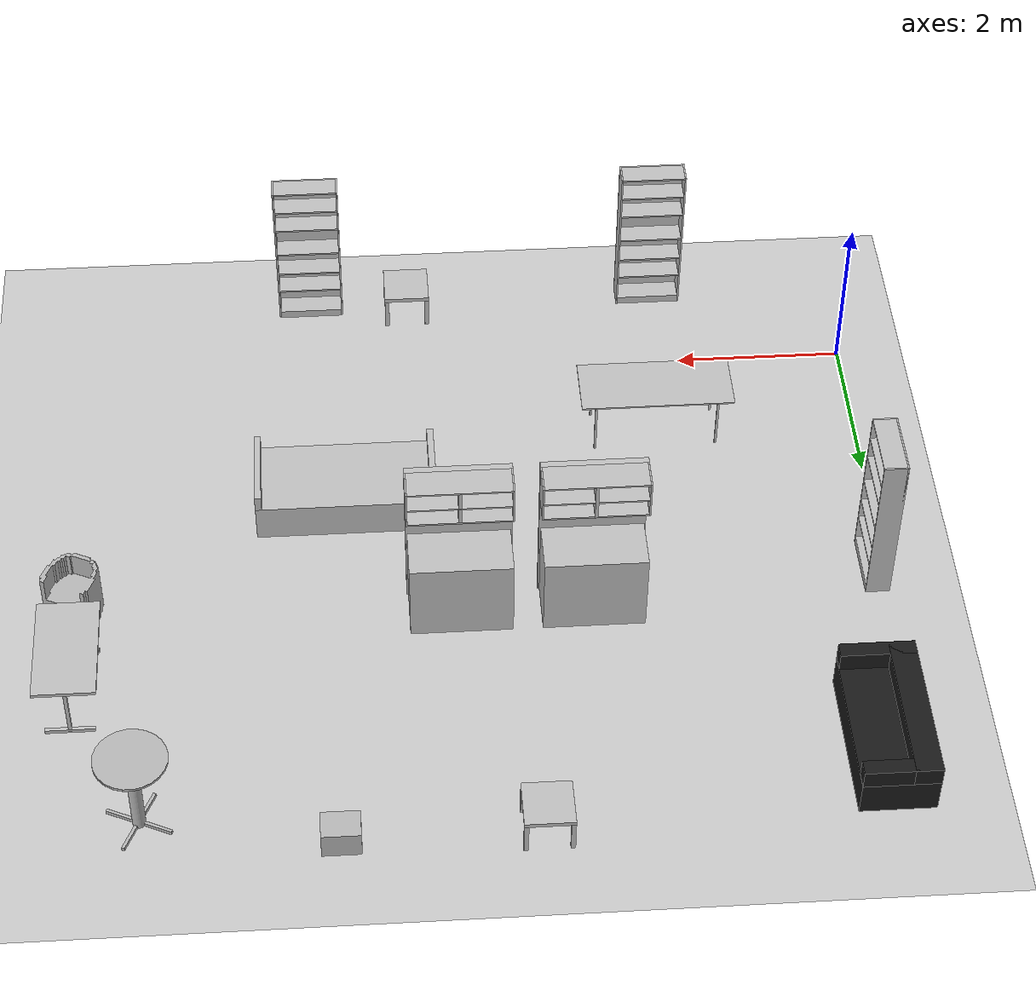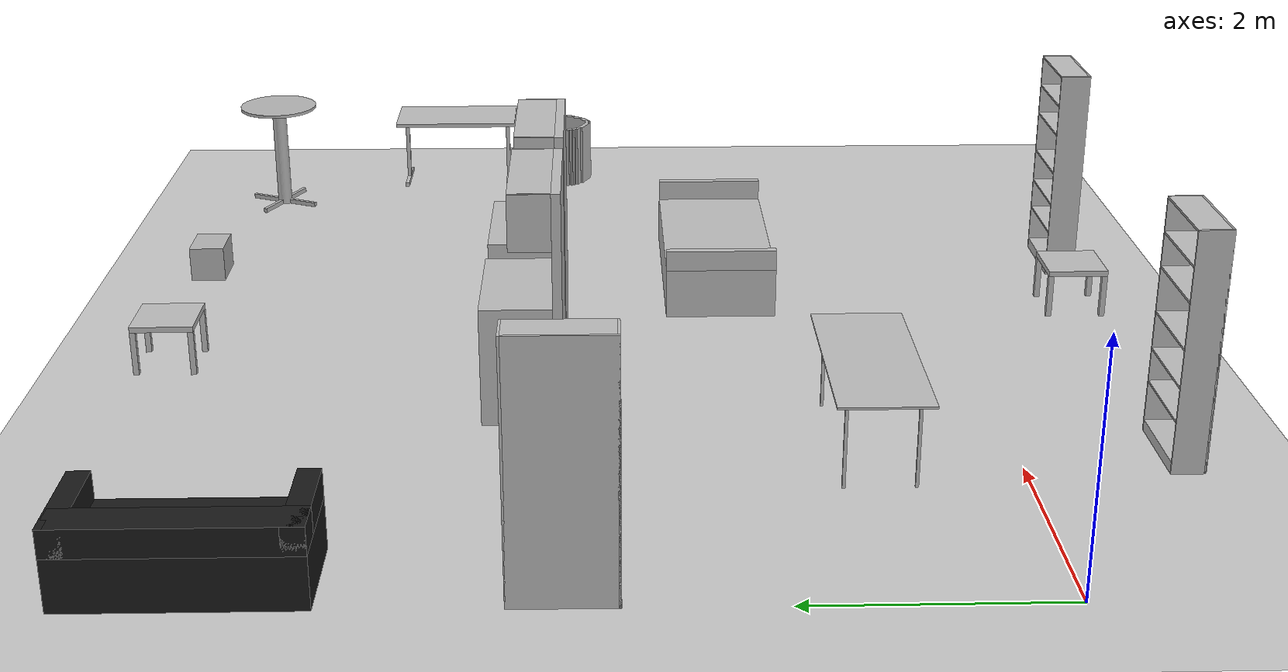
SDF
<sdf version="1.6">
 <world name="rgo2017">
  <light name="sun" type="directional">
   <direction>0.5 0.1 -0.9</direction>
   <pose>0 0 10 0 0 0</pose>
   <specular>0.2 0.2 0.2 1</specular>
   <diffuse>0.8 0.8 0.8 1</diffuse>
   <attenuation>
    <range>1000</range>
    <quadratic>0.001</quadratic>
    <constant>0.9</constant>
    <linear>0.01</linear>
   </attenuation>
  </light>
  <model name="living_room" type="room">
   <link name="in">
    <virtual_volume name="in_vv">
     <geometry><box><size>3.95 3.7 0.01</size></box></geometry>
     <pose>0.315 0.3 0.005 0 0 0</pose>
    </virtual_volume>
   </link>
   <pose>1.8 5.25 0 0 0 0</pose>
   <static>true</static>
  </model>
  <model name="bedroom" type="room">
   <link name="in">
    <virtual_volume name="in_vv">
     <geometry><box><size>4.5 4.65 0.01</size></box></geometry>
     <pose>-0.55 0.975 0.005 0 0 0</pose>
    </virtual_volume>
   </link>
   <pose>8.0 0.0 0 0 0 0</pose>
   <static>true</static>
  </model>
  <model name="dining_room" type="room">
   <link name="in">
    <virtual_volume name="in_vv">
     <geometry><box><size>4.76 4.79 0.01</size></box></geometry>
     <pose>-0.48 1.045 0.005 0 0 0</pose>
    </virtual_volume>
   </link>
   <pose>3.0 0.0 0 0 0 0</pose>
   <static>true</static>
  </model>
  <model name="kitchen" type="room">
   <link name="in">
    <virtual_volume name="in_vv">
     <geometry><box><size>6.0 3.3 0.01</size></box></geometry>
     <pose>0.7 -0.25 0.005 0 0 0</pose>
    </virtual_volume>
   </link>
   <pose>6.0 6.0 0 0 0 0</pose>
   <static>true</static>
  </model>
  <model name="initial_pose" type="waypoint"><pose>-1.0 0.0 0 0 0 0</pose><static>true</static></model>
  <model name="initial_pose_2" type="waypoint"><pose>9.5 -2.0 0 0 0 1.571</pose><static>true</static></model>
  <model name="registration_table1" type="waypoint"><pose>2.5 2.5 0 0 0 0</pose><static>true</static></model>
  <model name="registration_table2" type="waypoint"><pose>2.0 2.5 0 0 0 0</pose><static>true</static></model>
  <model name="registration_table3" type="waypoint"><pose>2.0 3.0 0 0 0 0</pose><static>true</static></model>
  <model name="exit_1_rips" type="waypoint"><pose>8.45 -2.8 0 0 0 -1.571</pose><static>true</static></model>
  <model name="exit_2_rips" type="waypoint"><pose>8.45 -2.24 0 0 0 -1.571</pose><static>true</static></model>
  <model name="exit_3_rips" type="waypoint"><pose>8.45 -1.4 0 0 0 -1.571</pose><static>true</static></model>
  <model name="exit_4_rips" type="waypoint"><pose>8.45 0.0 0 0 0 -1.571</pose><static>true</static></model>
  <model name="gpsr_meeting_point_1_old" type="waypoint">
   <pose>1.5 4.25 0 0 0 0</pose>
   <static>true</static>
  </model>
  <model name="gpsr_exit_door_1" type="waypoint">
   <pose>8.45 -2.8 0 0 0 -1.571</pose>
   <static>true</static>
  </model>
  <model name="gpsr_meeting_point_2" type="waypoint"><pose>1.5 4.25 0 0 0 0</pose><static>true</static></model>
  <model name="gpsr_exit_door_2" type="waypoint">
   <pose>-1.0 0.0 0 0 0 -3.1415</pose>
   <static>true</static>
  </model>
  <model name="gpsr_meeting_point_1" type="waypoint">
   <pose>0.8 2.6 0 0 0 -0.1745</pose>
   <static>true</static>
  </model>
  <model name="challenge_open_ask_waypoint" type="waypoint">
   <pose>4.0 6.0 0 0 0 3.1415</pose>
   <static>true</static>
  </model>
  <model name="trashbin">
   <link name="1_link">
    <collision name="1_col">
     <geometry><box><size>0.43 0.33 0.33</size></box></geometry>
     <pose>0.0 0.0 0.165 0 0 0</pose>
    </collision>
    <visual name="1_vis">
     <geometry><box><size>0.43 0.33 0.33</size></box></geometry>
     <pose>0.0 0.0 0.165 0 0 0</pose>
    </visual>
   </link>
   <pose>6.4 7.15 0 0 0 0</pose>
   <static>true</static>
  </model>
  <model name="final_meeting_point" type="waypoint">
   <pose>5.0 7.0 0 0 0 -1.57</pose>
   <static>true</static>
  </model>
  <include><name>floor</name><uri>model://ground_plane</uri></include>
  <include>
   <pose>2.447 1.1695 0.0 0 0 3.141592</pose>
   <name>dinner_table</name>
   <uri>model://rgo2017/table_dinner</uri>
  </include>
  <include>
   <pose>2.271 -1.258 0.0 0 0 1.570796</pose>
   <name>cabinet</name>
   <uri>model://rgo2017/bookcase</uri>
  </include>
  <include><pose>0.144 3.574 0.0 0 0 0</pose><name>bookshelf</name><uri>model://rgo2017/bookcase</uri></include>
  <include><pose>0.44 6.18 0.0 0 0 0</pose><name>sofa</name><uri>model://rgo2017/couch</uri></include>
  <include>
   <pose>9.331 3.696 0.0 0 0 -2</pose>
   <name>armchair3</name>
   <uri>model://rgo2017/armchair</uri>
  </include>
  <include>
   <pose>4.206 7.097 0.0 0 0 -1.570796</pose>
   <name>side_table</name>
   <uri>model://rgo2017/table_salon</uri>
  </include>
  <include>
   <pose>4.955 3.903 0.0 0 0 1.570796</pose>
   <name>stove</name>
   <uri>model://rgo2017/kitchen_sink</uri>
  </include>
  <include>
   <pose>3.447 3.903 0.0 0 0 1.570796</pose>
   <name>kitchencounter</name>
   <uri>model://rgo2017/kitchen_sink</uri>
  </include>
  <include>
   <pose>6.562 -1.252 0.0 0 0 1.570796</pose>
   <name>closet</name>
   <uri>model://rgo2017/bookcase</uri>
  </include>
  <include><pose>8.545 6.759 0.0 0 0 -2</pose><name>bar</name><uri>model://rgo2017/table_party</uri></include>
  <include>
   <pose>5.352 -1.146 0.0 0 0 1.570796</pose>
   <name>table_bedroom</name>
   <uri>model://rgo2017/table_salon</uri>
  </include>
  <include>
   <pose>6.209 2.175 0.0 0 0 -1.570796</pose>
   <name>bed</name>
   <uri>model://rgo2017/bed_frame</uri>
  </include>
  <include>
   <pose>9.331 4.896 0.0 0 0 3.141592</pose>
   <name>desk</name>
   <uri>model://rgo2017/table_bureau</uri>
  </include>
  <physics type="ode">
   <real_time_update_rate>333.0</real_time_update_rate>
   <max_step_size>0.003</max_step_size>
   <ode><constraints><cfm>0.0001</cfm></constraints><solver><type>quick</type><iters>100</iters></solver></ode>
  </physics>
 </world>
</sdf>

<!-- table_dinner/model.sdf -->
<sdf version="1.6">
  <model name="rgo2017/table_dinner">
    <link name="1_link">
      <collision name="1_col">
        <geometry>
          <box>
            <size>1.83 0.76 0.018</size>
          </box>
        </geometry>
      </collision>
      <visual name="1_vis">
        <geometry>
          <box>
            <size>1.83 0.76 0.018</size>
          </box>
        </geometry>
        <material>
          <ambient>0.75 0.75 0.75 1</ambient>
        </material>
      </visual>
      <pose>0 0 0.751 0 0 0</pose>
    </link>
    <link name="2_link">
      <collision name="2_col">
        <geometry>
          <box>
            <size>0.025 0.025 0.742</size>
          </box>
        </geometry>
      </collision>
      <visual name="2_vis">
        <geometry>
          <box>
            <size>0.025 0.025 0.742</size>
          </box>
        </geometry>
        <material>
          <ambient>0.75 0.75 0.75 1</ambient>
        </material>
      </visual>
      <pose>-0.7325 -0.2825 0.371 0 0 0</pose>
    </link>
    <link name="3_link">
      <collision name="3_col">
        <geometry>
          <box>
            <size>0.025 0.025 0.742</size>
          </box>
        </geometry>
      </collision>
      <visual name="3_vis">
        <geometry>
          <box>
            <size>0.025 0.025 0.742</size>
          </box>
        </geometry>
        <material>
          <ambient>0.75 0.75 0.75 1</ambient>
        </material>
      </visual>
      <pose>0.7325 -0.2825 0.371 0 0 0</pose>
    </link>
    <link name="4_link">
      <collision name="4_col">
        <geometry>
          <box>
            <size>0.025 0.025 0.742</size>
          </box>
        </geometry>
      </collision>
      <visual name="4_vis">
        <geometry>
          <box>
            <size>0.025 0.025 0.742</size>
          </box>
        </geometry>
        <material>
          <ambient>0.75 0.75 0.75 1</ambient>
        </material>
      </visual>
      <pose>-0.7325 0.2825 0.371 0 0 0</pose>
    </link>
    <link name="5_link">
      <collision name="5_col">
        <geometry>
          <box>
            <size>0.025 0.025 0.742</size>
          </box>
        </geometry>
      </collision>
      <visual name="5_vis">
        <geometry>
          <box>
            <size>0.025 0.025 0.742</size>
          </box>
        </geometry>
        <material>
          <ambient>0.75 0.75 0.75 1</ambient>
        </material>
      </visual>
      <pose>0.7325 0.2825 0.371 0 0 0</pose>
    </link>
    <link name="on_top_of">
      <virtual_volume name="on_top_of_vv">
        <geometry>
          <box>
            <size>1.77 0.7 0.25</size>
          </box>
        </geometry>
        <pose>0.0 0.0 0.905 0 0 0</pose>
      </virtual_volume>
    </link>
    <link name="in_front_of">
      <virtual_volume name="in_front_of_vv">
        <geometry>
          <box>
            <size>0.2 0.56 0.01</size>
          </box>
        </geometry>
        <pose>1.715 0.0 0.005 0 0 0</pose>
      </virtual_volume>
    </link>
    <static>true</static>
  </model>
</sdf>

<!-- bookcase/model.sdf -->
<sdf version="1.6">
  <model name="rgo2017/bookcase">
    <link name="1_link">
      <collision name="1_col">
        <geometry>
          <box>
            <size>0.28 0.018 2.015</size>
          </box>
        </geometry>
      </collision>
      <visual name="1_vis">
        <geometry>
          <box>
            <size>0.28 0.018 2.015</size>
          </box>
        </geometry>
        <material>
          <ambient>0.75 0.75 0.75 1</ambient>
        </material>
      </visual>
      <pose>0 -0.39 1.0075 0 0 0</pose>
    </link>
    <link name="2_link">
      <collision name="2_col">
        <geometry>
          <box>
            <size>0.28 0.018 2.015</size>
          </box>
        </geometry>
      </collision>
      <visual name="2_vis">
        <geometry>
          <box>
            <size>0.28 0.018 2.015</size>
          </box>
        </geometry>
        <material>
          <ambient>0.75 0.75 0.75 1</ambient>
        </material>
      </visual>
      <pose>0 0.39 1.0075 0 0 0</pose>
    </link>
    <link name="3_link">
      <collision name="3_col">
        <geometry>
          <box>
            <size>0.018 0.798 2.015</size>
          </box>
        </geometry>
      </collision>
      <visual name="3_vis">
        <geometry>
          <box>
            <size>0.018 0.798 2.015</size>
          </box>
        </geometry>
        <material>
          <ambient>0.75 0.75 0.75 1</ambient>
        </material>
      </visual>
      <pose>-0.131 0 1.0075 0 0 0</pose>
    </link>
    <link name="4_link">
      <collision name="4_col">
        <geometry>
          <box>
            <size>0.262 0.762 0.018</size>
          </box>
        </geometry>
      </collision>
      <visual name="4_vis">
        <geometry>
          <box>
            <size>0.262 0.762 0.018</size>
          </box>
        </geometry>
        <material>
          <ambient>0.75 0.75 0.75 1</ambient>
        </material>
      </visual>
      <pose>0.009 0 2.006 0 0 0</pose>
    </link>
    <link name="5_link">
      <collision name="5_col">
        <geometry>
          <box>
            <size>0.262 0.762 0.097</size>
          </box>
        </geometry>
      </collision>
      <visual name="5_vis">
        <geometry>
          <box>
            <size>0.262 0.762 0.097</size>
          </box>
        </geometry>
        <material>
          <ambient>0.75 0.75 0.75 1</ambient>
        </material>
      </visual>
      <pose>0.009 0 0.0485 0 0 0</pose>
    </link>
    <link name="6_link">
      <collision name="6_col">
        <geometry>
          <box>
            <size>0.262 0.762 0.018</size>
          </box>
        </geometry>
      </collision>
      <visual name="6_vis">
        <geometry>
          <box>
            <size>0.262 0.762 0.018</size>
          </box>
        </geometry>
        <material>
          <ambient>0.75 0.75 0.75 1</ambient>
        </material>
      </visual>
      <pose>0.009 0 0.439 0 0 0</pose>
    </link>
    <link name="7_link">
      <collision name="7_col">
        <geometry>
          <box>
            <size>0.262 0.762 0.018</size>
          </box>
        </geometry>
      </collision>
      <visual name="7_vis">
        <geometry>
          <box>
            <size>0.262 0.762 0.018</size>
          </box>
        </geometry>
        <material>
          <ambient>0.75 0.75 0.75 1</ambient>
        </material>
      </visual>
      <pose>0.009 0 0.726 0 0 0</pose>
    </link>
    <link name="8_link">
      <collision name="8_col">
        <geometry>
          <box>
            <size>0.262 0.762 0.018</size>
          </box>
        </geometry>
      </collision>
      <visual name="8_vis">
        <geometry>
          <box>
            <size>0.262 0.762 0.018</size>
          </box>
        </geometry>
        <material>
          <ambient>0.75 0.75 0.75 1</ambient>
        </material>
      </visual>
      <pose>0.009 0 1.044 0 0 0</pose>
    </link>
    <link name="9_link">
      <collision name="9_col">
        <geometry>
          <box>
            <size>0.262 0.762 0.018</size>
          </box>
        </geometry>
      </collision>
      <visual name="9_vis">
        <geometry>
          <box>
            <size>0.262 0.762 0.018</size>
          </box>
        </geometry>
        <material>
          <ambient>0.75 0.75 0.75 1</ambient>
        </material>
      </visual>
      <pose>0.009 0 1.43 0 0 0</pose>
    </link>
    <link name="10_link">
      <collision name="10_col">
        <geometry>
          <box>
            <size>0.262 0.762 0.018</size>
          </box>
        </geometry>
      </collision>
      <visual name="10_vis">
        <geometry>
          <box>
            <size>0.262 0.762 0.018</size>
          </box>
        </geometry>
        <material>
          <ambient>0.75 0.75 0.75 1</ambient>
        </material>
      </visual>
      <pose>0.009 0 1.718 0 0 0</pose>
    </link>
    <link name="in_front_of">
      <virtual_volume name="in_front_of_vv">
        <geometry>
          <box>
            <size>0.2 0.4 0.01</size>
          </box>
        </geometry>
        <pose>0.64 0.0 0.005 0 0 0</pose>
      </virtual_volume>
    </link>
    <link name="on_top_of">
      <virtual_volume name="on_top_of_vv">
        <geometry>
          <box>
            <size>0.202 0.702 0.25</size>
          </box>
        </geometry>
        <pose>0.009 0.0 0.88 0 0 0</pose>
      </virtual_volume>
    </link>
    <link name="shelf1">
      <virtual_volume name="shelf1_vv">
        <geometry>
          <box>
            <size>0.202 0.702 0.25</size>
          </box>
        </geometry>
        <pose>0.009 0.0 0.242 0 0 0</pose>
      </virtual_volume>
    </link>
    <link name="shelf2">
      <virtual_volume name="shelf2_vv">
        <geometry>
          <box>
            <size>0.202 0.702 0.212</size>
          </box>
        </geometry>
        <pose>0.009 0.0 0.574 0 0 0</pose>
      </virtual_volume>
    </link>
    <link name="shelf3">
      <virtual_volume name="shelf3_vv">
        <geometry>
          <box>
            <size>0.202 0.702 0.25</size>
          </box>
        </geometry>
        <pose>0.009 0.0 0.88 0 0 0</pose>
      </virtual_volume>
    </link>
    <link name="shelf4">
      <virtual_volume name="shelf4_vv">
        <geometry>
          <box>
            <size>0.202 0.702 0.25</size>
          </box>
        </geometry>
        <pose>0.009 0.0 1.198 0 0 0</pose>
      </virtual_volume>
    </link>
    <link name="shelf5">
      <virtual_volume name="shelf5_vv">
        <geometry>
          <box>
            <size>0.202 0.702 0.221</size>
          </box>
        </geometry>
        <pose>0.009 0.0 1.5695 0 0 0</pose>
      </virtual_volume>
    </link>
    <link name="shelf6">
      <virtual_volume name="shelf6_vv">
        <geometry>
          <box>
            <size>0.202 0.702 0.223</size>
          </box>
        </geometry>
        <pose>0.009 0.0 1.8585 0 0 0</pose>
      </virtual_volume>
    </link>
    <static>true</static>
  </model>
</sdf>

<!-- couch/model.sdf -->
<sdf version="1.6">
  <model name="rgo2017/couch">
    <link name="1_link">
      <collision name="1_col">
        <geometry>
          <box>
            <size>0.85 1.8 0.42</size>
          </box>
        </geometry>
      </collision>
      <visual name="1_vis">
        <geometry>
          <box>
            <size>0.85 1.8 0.42</size>
          </box>
        </geometry>
        <material>
          <ambient>0.1 0.1 0.1 1</ambient>
        </material>
      </visual>
      <pose>0.0 0.0 0.21 0 0 0</pose>
    </link>
    <link name="2_link">
      <collision name="2_col">
        <geometry>
          <box>
            <size>0.3 1.8 0.225</size>
          </box>
        </geometry>
      </collision>
      <visual name="2_vis">
        <geometry>
          <box>
            <size>0.3 1.8 0.225</size>
          </box>
        </geometry>
        <material>
          <ambient>0.1 0.1 0.1 1</ambient>
        </material>
      </visual>
      <pose>-0.275 0.0 0.5325 0 0 0</pose>
    </link>
    <link name="3_link">
      <collision name="3_col">
        <geometry>
          <box>
            <size>0.85 0.175 0.225</size>
          </box>
        </geometry>
      </collision>
      <visual name="3_vis">
        <geometry>
          <box>
            <size>0.85 0.175 0.225</size>
          </box>
        </geometry>
        <material>
          <ambient>0.1 0.1 0.1 1</ambient>
        </material>
      </visual>
      <pose>0.0 -0.812 0.5325 0 0 0</pose>
    </link>
    <link name="4_link">
      <collision name="4_col">
        <geometry>
          <box>
            <size>0.85 0.175 0.225</size>
          </box>
        </geometry>
      </collision>
      <visual name="4_vis">
        <geometry>
          <box>
            <size>0.85 0.175 0.225</size>
          </box>
        </geometry>
        <material>
          <ambient>0.1 0.1 0.1 1</ambient>
        </material>
      </visual>
      <pose>0.0 0.812 0.5325 0 0 0</pose>
    </link>
    <link name="on_top_of">
      <virtual_volume name="on_top_of_vv">
        <geometry>
          <box>
            <size>0.35 1.36 0.32</size>
          </box>
        </geometry>
        <pose>0.175 0.0 0.6 0 0 0</pose>
      </virtual_volume>
    </link>
    <link name="in_front_of">
      <virtual_volume name="in_front_of_vv">
        <geometry>
          <box>
            <size>0.2 0.6 0.01</size>
          </box>
        </geometry>
        <pose>1.05 0.0 0.005 0 0 0</pose>
      </virtual_volume>
    </link>
    <static>true</static>
  </model>
</sdf>

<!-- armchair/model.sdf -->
<sdf version="1.6">
  <model name="rgo2017/armchair">
    <link name="1_link">
      <collision name="1_col">
        <geometry>
          <mesh>
            <uri>model://rgo2017/armchair/heightmap.stl</uri>
          </mesh>
        </geometry>
      </collision>
      <visual name="1_vis">
        <geometry>
          <mesh>
            <uri>model://rgo2017/armchair/heightmap.stl</uri>
          </mesh>
        </geometry>
      </visual>
      <pose>0 0 0 0 0 -1.57</pose>
    </link>
    <static>true</static>
  </model>
</sdf>

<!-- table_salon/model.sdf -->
<sdf version="1.6">
  <model name="rgo2017/table_salon" type="table">
    <link name="1_link">
      <collision name="1_col">
        <geometry>
          <box>
            <size>0.55 0.55 0.05</size>
          </box>
        </geometry>
      </collision>
      <visual name="1_vis">
        <geometry>
          <box>
            <size>0.55 0.55 0.05</size>
          </box>
        </geometry>
        <material>
          <ambient>0.75 0.75 0.75 1</ambient>
        </material>
      </visual>
      <pose>0 0 0.425 0 0 0</pose>
    </link>
    <link name="2_link">
      <collision name="2_col">
        <geometry>
          <box>
            <size>0.05 0.05 0.4</size>
          </box>
        </geometry>
      </collision>
      <visual name="2_vis">
        <geometry>
          <box>
            <size>0.05 0.05 0.4</size>
          </box>
        </geometry>
        <material>
          <ambient>0.75 0.75 0.75 1</ambient>
        </material>
      </visual>
      <pose>-0.25 -0.25 0.2 0 0 0</pose>
    </link>
    <link name="3_link">
      <collision name="3_col">
        <geometry>
          <box>
            <size>0.05 0.05 0.4</size>
          </box>
        </geometry>
      </collision>
      <visual name="3_vis">
        <geometry>
          <box>
            <size>0.05 0.05 0.4</size>
          </box>
        </geometry>
        <material>
          <ambient>0.75 0.75 0.75 1</ambient>
        </material>
      </visual>
      <pose>0.25 -0.25 0.2 0 0 0</pose>
    </link>
    <link name="4_link">
      <collision name="4_col">
        <geometry>
          <box>
            <size>0.05 0.05 0.4</size>
          </box>
        </geometry>
      </collision>
      <visual name="4_vis">
        <geometry>
          <box>
            <size>0.05 0.05 0.4</size>
          </box>
        </geometry>
        <material>
          <ambient>0.75 0.75 0.75 1</ambient>
        </material>
      </visual>
      <pose>-0.25 0.25 0.2 0 0 0</pose>
    </link>
    <link name="5_link">
      <collision name="5_col">
        <geometry>
          <box>
            <size>0.05 0.05 0.4</size>
          </box>
        </geometry>
      </collision>
      <visual name="5_vis">
        <geometry>
          <box>
            <size>0.05 0.05 0.4</size>
          </box>
        </geometry>
        <material>
          <ambient>0.75 0.75 0.75 1</ambient>
        </material>
      </visual>
      <pose>0.25 0.25 0.2 0 0 0</pose>
    </link>
    <link name="on_top_of">
      <virtual_volume name="on_top_of_vv">
        <geometry>
          <box>
            <size>0.49 0.49 0.25</size>
          </box>
        </geometry>
        <pose>0.0 0.0 0.595 0 0 0</pose>
      </virtual_volume>
    </link>
    <link name="in_front_of">
      <virtual_volume name="in_front_of_vv">
        <geometry>
          <box>
            <size>0.2 0.35 0.01</size>
          </box>
        </geometry>
        <pose>0.8 0.0 0.005 0 0 0</pose>
      </virtual_volume>
    </link>
    <static>true</static>
  </model>
</sdf>

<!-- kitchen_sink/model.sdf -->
<sdf version="1.6">
  <model name="rgo2017/kitchen_sink">
    <link name="1_link">
      <collision name="1_col">
        <geometry>
          <box>
            <size>0.6 1.169 1.02</size>
          </box>
        </geometry>
      </collision>
      <visual name="1_vis">
        <geometry>
          <box>
            <size>0.6 1.169 1.02</size>
          </box>
        </geometry>
        <material>
          <ambient>0.75 0.75 0.75 1</ambient>
        </material>
      </visual>
      <pose>0.083 0 0.51 0 0 0</pose>
    </link>
    <link name="2_link">
      <collision name="2_col">
        <geometry>
          <box>
            <size>0.078 1.205 2.002</size>
          </box>
        </geometry>
      </collision>
      <visual name="2_vis">
        <geometry>
          <box>
            <size>0.078 1.205 2.002</size>
          </box>
        </geometry>
        <material>
          <ambient>0.75 0.75 0.75 1</ambient>
        </material>
      </visual>
      <pose>-0.256 0 1.001 0 0 0</pose>
    </link>
    <link name="3_link">
      <collision name="3_col">
        <geometry>
          <box>
            <size>0.35 0.018 0.482</size>
          </box>
        </geometry>
      </collision>
      <visual name="3_vis">
        <geometry>
          <box>
            <size>0.35 0.018 0.482</size>
          </box>
        </geometry>
        <material>
          <ambient>0.75 0.75 0.75 1</ambient>
        </material>
      </visual>
      <pose>-0.042 -0.5935 1.76 0 0 0</pose>
    </link>
    <link name="4_link">
      <collision name="4_col">
        <geometry>
          <box>
            <size>0.35 0.018 0.482</size>
          </box>
        </geometry>
      </collision>
      <visual name="4_vis">
        <geometry>
          <box>
            <size>0.35 0.018 0.482</size>
          </box>
        </geometry>
        <material>
          <ambient>0.75 0.75 0.75 1</ambient>
        </material>
      </visual>
      <pose>-0.042 0.5935 1.76 0 0 0</pose>
    </link>
    <link name="5_link">
      <collision name="5_col">
        <geometry>
          <box>
            <size>0.35 1.169 0.018</size>
          </box>
        </geometry>
      </collision>
      <visual name="5_vis">
        <geometry>
          <box>
            <size>0.35 1.169 0.018</size>
          </box>
        </geometry>
        <material>
          <ambient>0.75 0.75 0.75 1</ambient>
        </material>
      </visual>
      <pose>-0.042 0 1.993 0 0 0</pose>
    </link>
    <link name="6_link">
      <collision name="6_col">
        <geometry>
          <box>
            <size>0.35 1.169 0.018</size>
          </box>
        </geometry>
      </collision>
      <visual name="6_vis">
        <geometry>
          <box>
            <size>0.35 1.169 0.018</size>
          </box>
        </geometry>
        <material>
          <ambient>0.75 0.75 0.75 1</ambient>
        </material>
      </visual>
      <pose>-0.042 0 1.529 0 0 0</pose>
    </link>
    <link name="7_link">
      <collision name="7_col">
        <geometry>
          <box>
            <size>0.35 1.169 0.018</size>
          </box>
        </geometry>
      </collision>
      <visual name="7_vis">
        <geometry>
          <box>
            <size>0.35 1.169 0.018</size>
          </box>
        </geometry>
        <material>
          <ambient>0.75 0.75 0.75 1</ambient>
        </material>
      </visual>
      <pose>-0.042 0 1.754 0 0 0</pose>
    </link>
    <link name="8_link">
      <collision name="8_col">
        <geometry>
          <box>
            <size>0.35 0.036 0.482</size>
          </box>
        </geometry>
      </collision>
      <visual name="8_vis">
        <geometry>
          <box>
            <size>0.35 0.036 0.482</size>
          </box>
        </geometry>
        <material>
          <ambient>0.75 0.75 0.75 1</ambient>
        </material>
      </visual>
      <pose>-0.042 0 1.76 0 0 0</pose>
    </link>
    <link name="in_front_of">
      <virtual_volume name="in_front_of_vv">
        <geometry>
          <box>
            <size>0.2 1.005 0.01</size>
          </box>
        </geometry>
        <pose>1.3 0.0 0.005 0 0 0</pose>
      </virtual_volume>
    </link>
    <link name="on_top_of">
      <virtual_volume name="on_top_of_vv">
        <geometry>
          <box>
            <size>0.53 1.14 0.3</size>
          </box>
        </geometry>
        <pose>0.078 0.0 1.19 0 0 0</pose>
      </virtual_volume>
    </link>
    <static>true</static>
  </model>
</sdf>

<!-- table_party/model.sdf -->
<sdf version="1.6">
  <model name="rgo2017/table_party">
    <link name="1_link">
      <collision name="1_col">
        <geometry>
          <cylinder>
            <length>0.03</length>
            <radius>0.4</radius>
          </cylinder>
        </geometry>
      </collision>
      <visual name="1_vis">
        <geometry>
          <cylinder>
            <length>0.03</length>
            <radius>0.4</radius>
          </cylinder>
        </geometry>
      </visual>
      <pose>0 0 1.085 0 0 0</pose>
    </link>
    <link name="2_link">
      <collision name="2_col">
        <geometry>
          <cylinder>
            <length>1.08</length>
            <radius>0.0725</radius>
          </cylinder>
        </geometry>
      </collision>
      <visual name="2_vis">
        <geometry>
          <cylinder>
            <length>1.08</length>
            <radius>0.0725</radius>
          </cylinder>
        </geometry>
      </visual>
      <pose>0 0 0.54 0 0 0</pose>
    </link>
    <link name="3_link">
      <collision name="3_col">
        <geometry>
          <box>
            <size>0.775 0.035 0.045</size>
          </box>
        </geometry>
      </collision>
      <visual name="3_vis">
        <geometry>
          <box>
            <size>0.775 0.035 0.045</size>
          </box>
        </geometry>
      </visual>
      <pose>0 0 0.0225 0 0 0</pose>
    </link>
    <link name="4_link">
      <collision name="4_col">
        <geometry>
          <box>
            <size>0.035 0.775 0.045</size>
          </box>
        </geometry>
      </collision>
      <visual name="4_vis">
        <geometry>
          <box>
            <size>0.035 0.775 0.045</size>
          </box>
        </geometry>
      </visual>
      <pose>0 0 0.0225 0 0 0</pose>
    </link>
    <link name="in_front_of">
      <virtual_volume name="in_front_of_vv">
        <geometry>
          <box>
            <size>0.25 0.6 0.01</size>
          </box>
        </geometry>
        <pose>0.775 0.0 0.005 0 0 0</pose>
      </virtual_volume>
    </link>
    <link name="on_top_of">
      <virtual_volume name="on_top_of_vv">
        <geometry>
          <box>
            <size>0.52 0.52 0.15</size>
          </box>
        </geometry>
        <pose>0.0 0.0 1.195 0 0 0</pose>
      </virtual_volume>
    </link>
    <static>true</static>
  </model>
</sdf>

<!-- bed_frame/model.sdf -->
<sdf version="1.6">
  <model name="rgo2017/bed_frame">
    <link name="1_link">
      <collision name="1_col">
        <geometry>
          <box>
            <size>1.02 2.12 0.46</size>
          </box>
        </geometry>
      </collision>
      <visual name="1_vis">
        <geometry>
          <box>
            <size>1.02 2.12 0.46</size>
          </box>
        </geometry>
        <material>
          <ambient>0.75 0.75 0.75 1</ambient>
        </material>
      </visual>
      <pose>0 0 0.23 0 0 0</pose>
    </link>
    <link name="2_link">
      <collision name="2_col">
        <geometry>
          <box>
            <size>1.02 0.075 0.19</size>
          </box>
        </geometry>
      </collision>
      <visual name="2_vis">
        <geometry>
          <box>
            <size>1.02 0.075 0.19</size>
          </box>
        </geometry>
        <material>
          <ambient>0.75 0.75 0.75 1</ambient>
        </material>
      </visual>
      <pose>0 -1.0225 0.555 0 0 0</pose>
    </link>
    <link name="3_link">
      <collision name="3_col">
        <geometry>
          <box>
            <size>1.02 0.075 0.19</size>
          </box>
        </geometry>
      </collision>
      <visual name="3_vis">
        <geometry>
          <box>
            <size>1.02 0.075 0.19</size>
          </box>
        </geometry>
        <material>
          <ambient>0.75 0.75 0.75 1</ambient>
        </material>
      </visual>
      <pose>0 1.0225 0.555 0 0 0</pose>
    </link>
    <link name="in_front_of">
      <virtual_volume name="in_front_of_vv">
        <geometry>
          <box>
            <size>2.2 2.1 0.01</size>
          </box>
        </geometry>
        <pose>0.0 0.55 0.005 0 0 0</pose>
      </virtual_volume>
    </link>
    <static>true</static>
  </model>
</sdf>

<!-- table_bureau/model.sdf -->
<sdf version="1.6">
  <model name="rgo2017/table_bureau">
    <link name="1_link">
      <collision name="1_col">
        <geometry>
          <box>
            <size>0.705 1.31 0.04</size>
          </box>
        </geometry>
      </collision>
      <visual name="1_vis">
        <geometry>
          <box>
            <size>0.705 1.31 0.04</size>
          </box>
        </geometry>
        <material>
          <ambient>0.75 0.75 0.75 1</ambient>
        </material>
      </visual>
      <pose>0 0 0.73 0 0 0</pose>
    </link>
    <link name="2_link">
      <collision name="2_col">
        <geometry>
          <box>
            <size>0.04 0.04 0.699</size>
          </box>
        </geometry>
      </collision>
      <visual name="2_vis">
        <geometry>
          <box>
            <size>0.04 0.04 0.699</size>
          </box>
        </geometry>
        <material>
          <ambient>0.75 0.75 0.75 1</ambient>
        </material>
      </visual>
      <pose>0 0.565 0.3495 0 0 0</pose>
    </link>
    <link name="3_link">
      <collision name="3_col">
        <geometry>
          <box>
            <size>0.04 0.04 0.699</size>
          </box>
        </geometry>
      </collision>
      <visual name="3_vis">
        <geometry>
          <box>
            <size>0.04 0.04 0.699</size>
          </box>
        </geometry>
        <material>
          <ambient>0.75 0.75 0.75 1</ambient>
        </material>
      </visual>
      <pose>0.0 -0.565 0.3495 0 0 0</pose>
    </link>
    <link name="4_link">
      <collision name="4_col">
        <geometry>
          <box>
            <size>0.555 0.04 0.045</size>
          </box>
        </geometry>
      </collision>
      <visual name="4_vis">
        <geometry>
          <box>
            <size>0.555 0.04 0.045</size>
          </box>
        </geometry>
        <material>
          <ambient>0.75 0.75 0.75 1</ambient>
        </material>
      </visual>
      <pose>0.0 0.565 0.0225 0 0 0</pose>
    </link>
    <link name="5_link">
      <collision name="5_col">
        <geometry>
          <box>
            <size>0.555 0.04 0.045</size>
          </box>
        </geometry>
      </collision>
      <visual name="5_vis">
        <geometry>
          <box>
            <size>0.555 0.04 0.045</size>
          </box>
        </geometry>
        <material>
          <ambient>0.75 0.75 0.75 1</ambient>
        </material>
      </visual>
      <pose>0.0 -0.565 0.0225 0 0 0</pose>
    </link>
    <link name="on_top_of">
      <virtual_volume name="on_top_of_vv">
        <geometry>
          <box>
            <size>0.64 1.24 0.25</size>
          </box>
        </geometry>
        <pose>0.0 0.0 0.9 0 0 0</pose>
      </virtual_volume>
    </link>
    <link name="in_front_of">
      <virtual_volume name="in_front_of_vv">
        <geometry>
          <box>
            <size>0.2 0.9 0.01</size>
          </box>
        </geometry>
        <pose>1.3 0.0 0.005 0 0 0</pose>
      </virtual_volume>
    </link>
    <static>true</static>
  </model>
</sdf>
